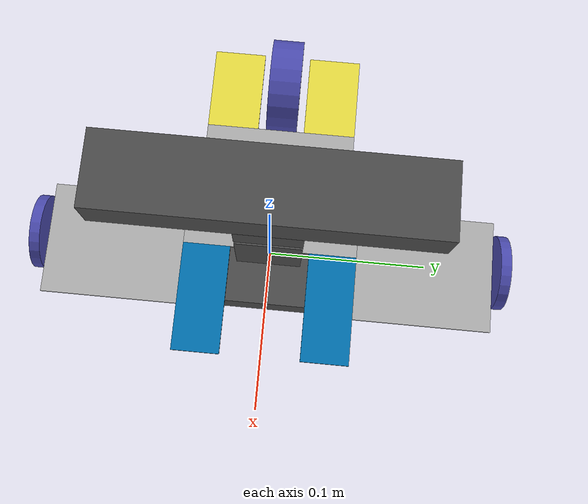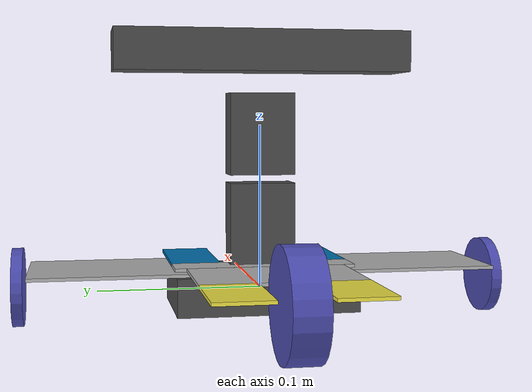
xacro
<?xml version="1.0"?>
<robot xmlns:xacro="http://www.ros.org/wiki/xacro" name="Scottbot">

  <!-- Materials -->

  <material name="darkgray">
    <color rgba="0.3 0.3 0.3 1"/>
  </material>

  <material name="lightgray">
    <color rgba="0.7 0.7 0.7 1"/>
  </material>

  <material name="red">
    <color rgba="0.7 0.3 0.3 1"/>
  </material>

  <material name="green">
    <color rgba="0.3 0.7 0.3 1"/>
  </material>

  <material name="blue">
    <color rgba="0.3 0.3 0.7 1"/>
  </material>

  <!-- Macros -->

  <xacro:macro name="default_inertial" params="mass">
    <inertial>
      <mass value="${mass}" />
      <inertia ixx="1.0" ixy="0.0" ixz="0.0"
	       iyy="1.0" iyz="0.0"
	       izz="1.0" />
    </inertial>
  </xacro:macro>

  <!-- Links -->

  <link name="base_link">
    <visual>
      <geometry>
	<box size="0.070 0.110 0.023"/>
      </geometry>
      <material name="darkgray"/>
    </visual>
  </link>

  <link name="left_plate">
    <visual>
      <geometry>
	<box size="0.070 0.110 0.002"/>
      </geometry>
      <origin xyz="0.000 0.055 0.000" rpy="0 0 0"/>
      <material name="lightgray"/>
    </visual>
  </link>

  <link name="right_plate">
    <visual>
      <geometry>
	<box size="0.070 0.110 0.002"/>
      </geometry>
      <origin xyz="0.000 -0.055 0.000" rpy="0 0 0"/>
      <material name="lightgray"/>
    </visual>
  </link>

  <link name="rear_link">
    <visual>
      <geometry>
	<box size="0.058 0.096 0.002"/>
      </geometry>
      <origin xyz="-0.029 0 0"/>
      <material name="lightgray"/>
    </visual>
    <visual>
      <geometry>
	<box size="0.052 0.033 0.002"/>
      </geometry>
      <origin xyz="${-0.058 - 0.052/2} ${(0.096/2 - 0.033/2)} 0"/>
    </visual>
    <visual>
      <geometry>
	<box size="0.052 0.033 0.002"/>
      </geometry>
      <origin xyz="${-0.058 - 0.052/2} ${-(0.096/2 - 0.033/2)} 0"/>
    </visual>
  </link>

  <link name="top_plate">
    <visual>
      <geometry>
	<box size="0.022 0.110 0.002"/>
      </geometry>
      <origin xyz="0.011 0 0"/>
      <material name="lightgray"/>
    </visual>
    <visual>
      <geometry>
	<box size="0.068 0.030 0.002"/>
      </geometry>
      <origin xyz="${0.022 + 0.068/2} ${(0.110/2 - 0.030/2)} 0"/>
    </visual>
    <visual>
      <geometry>
	<box size="0.068 0.030 0.002"/>
      </geometry>
      <origin xyz="${0.022 + 0.068/2} ${-(0.110/2 - 0.030/2)} 0"/>
    </visual>
  </link>

  <link name="omni_wheel">
    <visual>
      <geometry>
	<cylinder length="0.020" radius="0.0315"/>
      </geometry>
      <material name="blue"/>
      <origin xyz="0 0 0" rpy="0 0 0"/>
    </visual>
  </link>

  <link name="wheel_L">
    <visual>
      <geometry>
	<cylinder length="0.0065" radius="0.0235"/>
      </geometry>
      <material name="blue"/>
      <origin xyz="0 0 -0.00325" rpy="0 0 0"/>
    </visual>
  </link>

  <link name="wheel_R">
    <visual>
      <geometry>
	<cylinder length="0.0065" radius="0.0235"/>
      </geometry>
      <material name="blue"/>
      <origin xyz="0 0 0.00325" rpy="0 0 0"/>
    </visual>
  </link>

  <link name="neck_yaw">
    <visual>
      <geometry>
	<box size="0.020 0.040 0.050"/>
      </geometry>
      <material name="darkgray"/>
      <origin xyz="0 0 0.030"/>
    </visual>
  </link>

  <link name="neck_pitch">
    <visual>
      <geometry>
	<box size="0.020 0.040 0.050"/>
      </geometry>
      <material name="darkgray"/>
      <origin xyz="0 0 0.020"/>
    </visual>
  </link>

  <link name="camera_link">
    <visual>
      <geometry>
	<box size="0.040 0.180 0.025"/>
      </geometry>
      <material name="darkgray"/>
    </visual>
  </link>

  <!-- Joints -->

  <joint name="leftwing_joint" type="fixed">
    <parent link="base_link"/>
    <child link="left_plate"/>
    <origin xyz="0.005 ${0.055 - 0.024} 0.0125" rpy="0 0 0"/>
  </joint>

  <joint name="rightwing_joint" type="fixed">
    <parent link="base_link"/>
    <child link="right_plate"/>
    <origin xyz="0.005 ${-0.055 + 0.024} 0.0125" rpy="0 0 0"/>
  </joint>

  <joint name="rear_joint" type="fixed">
    <parent link="base_link"/>
    <child link="rear_link"/>
    <origin xyz="${-0.045 + 0.024} 0.00 0.0145" rpy="0 0 0"/>
  </joint>

  <joint name="topplate_joint" type="fixed">
    <parent link="base_link"/>
    <child link="top_plate"/>
    <origin xyz="${-0.045 + 0.0241} 0.00 0.0145" rpy="0 0 0"/>
  </joint>

  <joint name="rear_omni" type="continuous">
    <parent link="base_link"/>
    <child link="omni_wheel"/>
    <origin xyz="${-0.045 - 0.06625} 0.0 0.0091" rpy="${pi/2} 0 0"/>
    <axis xyz="0 0 1"/>
  </joint>

  <joint name="left_wheel" type="continuous">
    <parent link="base_link"/>
    <child link="wheel_L"/>
    <origin xyz="0 0.1433 0.004" rpy="${pi/2} 0 0"/>
    <axis xyz="0 0 1"/>
  </joint>

  <joint name="right_wheel" type="continuous">
    <parent link="base_link"/>
    <child link="wheel_R"/>
    <origin xyz="0 -0.1433 0.004" rpy="${pi/2} 0 0"/>
    <axis xyz="0 0 1"/>
  </joint>

  <joint name="neck_yaw_j" type="revolute">
    <parent link="base_link"/>
    <child link="neck_yaw"/>
    <origin xyz="0.0 0.0 0.01" rpy="0 0 0"/>
    <limit effort="30" velocity="1" lower="-1.75" upper="1.75"/>
    <axis xyz="0 0 1"/>
  </joint>

  <joint name="neck_pitch_j" type="revolute">
    <parent link="neck_yaw"/>
    <child link="neck_pitch"/>
    <origin xyz="0.0 0.0 0.065" rpy="0 0 0"/>
    <limit effort="30" velocity="1" lower="-0.5" upper="0.8"/>
    <axis xyz="0 1 0"/>
  </joint>

  <joint name="camera_pitch" type="fixed">
    <parent link="neck_pitch"/>
    <child link="camera_link"/>
    <origin xyz="0.0 0.0 0.0704" rpy="0 0 0"/>
  </joint>

</robot>
